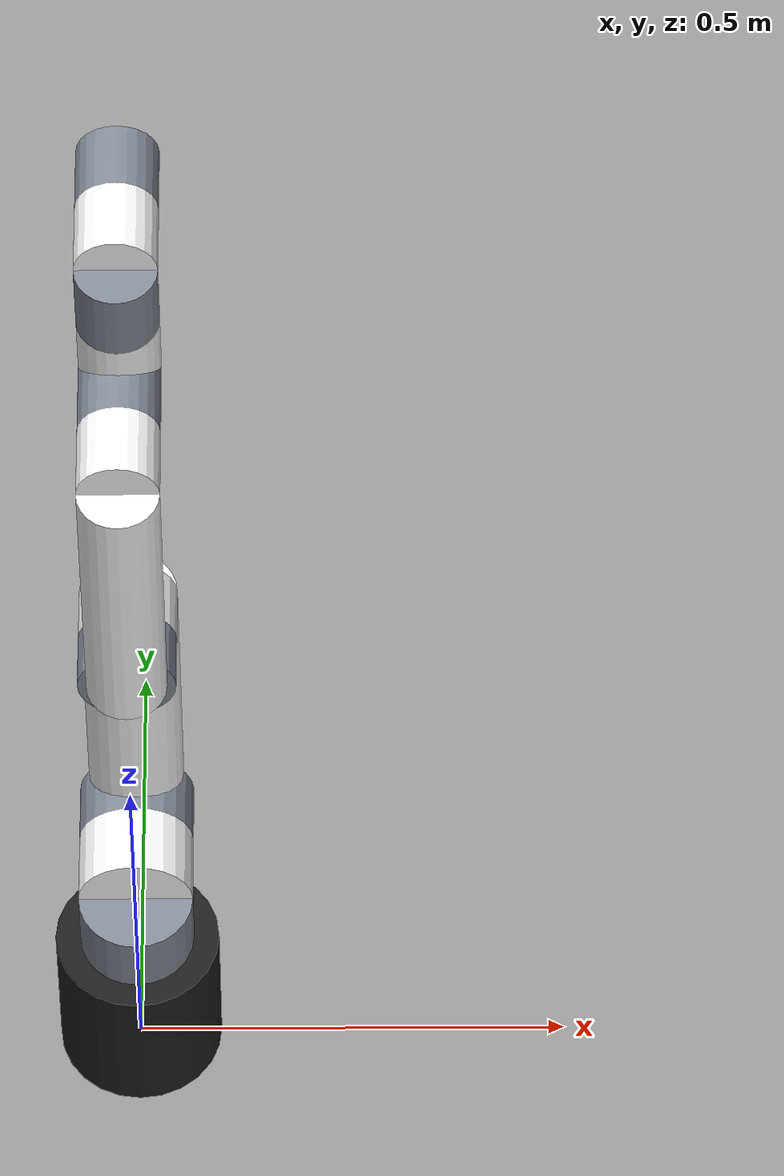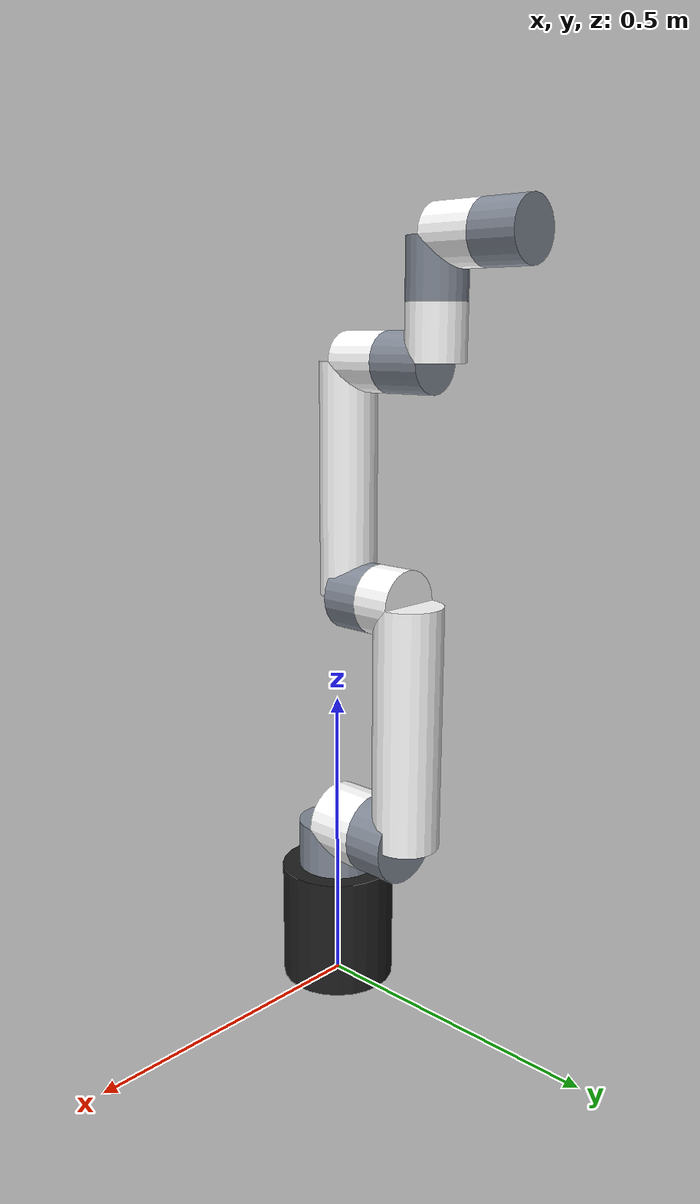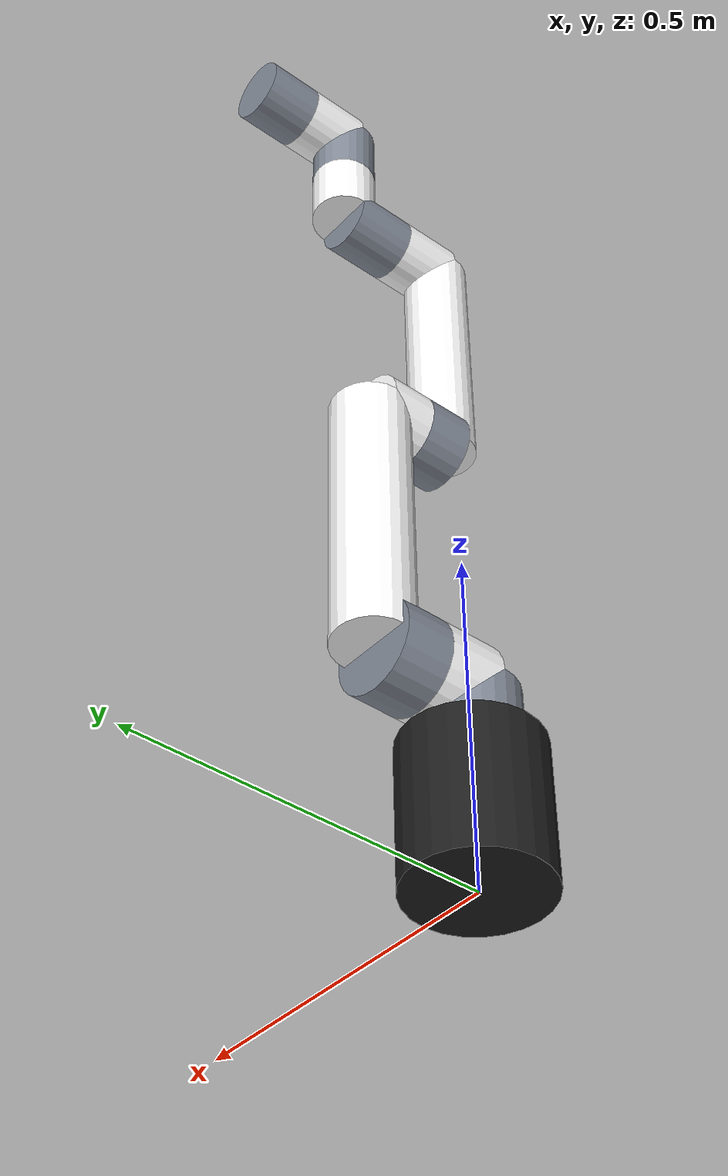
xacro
<?xml version="1.0"?>
<robot name="chin_arm" xmlns:xacro="http://ros.org/wiki/xacro">

  <xacro:property name="arm_id" value="chin"/>
  <!--is the robot being simulated in gazebo?-->
  <xacro:property name="gazebo" value="false"/>
  <xacro:property name="safety_distance" value="0"/>

  <xacro:property name="link_base_height" value="0.204"/>
  <xacro:property name="link_base_radius" value="0.095"/>
  <xacro:property name="link_1_height" value="0.081"/>
  <xacro:property name="link_1_radius" value="0.066"/>
  <xacro:property name="link_2_height" value="0.082"/>
  <xacro:property name="link_2_radius" value="0.066"/>
  <xacro:property name="link_3_height" value="0.07"/>
  <xacro:property name="link_3_radius" value="0.066"/>
  <xacro:property name="link_4_height" value="0.398"/>
  <xacro:property name="link_4_radius" value="0.055"/>
  <xacro:property name="link_5_height" value="0.065"/>
  <xacro:property name="link_5_radius" value="0.055"/>
  <xacro:property name="link_6_height" value="0.063"/>
  <xacro:property name="link_6_radius" value="0.055"/>
  <xacro:property name="link_7_height" value="0.36"/>
  <xacro:property name="link_7_radius" value="0.045"/>
  <xacro:property name="link_8_height" value="0.083"/>
  <xacro:property name="link_8_radius" value="0.045"/>
  <xacro:property name="link_9_height" value="0.087"/>
  <xacro:property name="link_9_radius" value="0.045"/>
  <xacro:property name="link_10_height" value="0.083"/>
  <xacro:property name="link_10_radius" value="0.045"/>
  <xacro:property name="link_11_height" value="0.087"/>
  <xacro:property name="link_11_radius" value="0.045"/>
  <xacro:property name="link_12_height" value="0.083"/>
  <xacro:property name="link_12_radius" value="0.045"/>
  <xacro:property name="link_13_height" value="0.077"/>
  <xacro:property name="link_13_radius" value="0.045"/>

  <xacro:property name="mesh" value="no"/>
  <xacro:property name="description_pkg" value="${arm_id}_description"/>

  <material name="white">
    <color rgba="1 1 1 1"/>
  </material>
  <material name="blue">
    <color rgba="0 0 0.8 1"/>
  </material>
  <material name="silver">
    <color rgba="0.51 0.54 0.59 1"/>
  </material>

  <!-- with two spheres at its caps. The capsule will always be    -->
  <!-- aligned with the axis of 'direction' you pass along.        -->
  <!-- radius: Radii of both the cylinder and both spheres [m]     -->
  <!-- length: Length of the cylinder/distance between the centers -->
  <!--         of the spheres. NOT overall length of capsule!      -->
  <!-- xyz:    Position of the center of the capsule/cylinder      -->
  <!-- direction: One of { x, y, z, -x, -y, -z }                   -->
  <xacro:macro name="collision_capsule" params="radius length xyz:='0 0 0' direction:='z'">
    <xacro:property name="r" value="${0.5*pi if 'y' in direction else 0}"/>
    <xacro:property name="p" value="${0.5*pi if 'x' in direction else 0}"/>
    <xacro:property name="y" value="0"/>
    <xacro:property name="x" value="${xyz.split(' ')[0]}"/>
    <xacro:property name="y" value="${xyz.split(' ')[1]}"/>
    <xacro:property name="z" value="${xyz.split(' ')[2]}"/>
    <!--sphere center offsets from center of cylinder-->
    <xacro:property name="sx" value="${0.5*length if 'x' in direction else 0}"/>
    <xacro:property name="sy" value="${0.5*length if 'y' in direction else 0}"/>
    <xacro:property name="sz" value="${0.5*length if 'z' in direction else 0}"/>
    <collision>
      <origin xyz="${x} ${y} ${z}" rpy="${r} ${p} ${y}"/>
      <geometry>
        <cylinder radius="${radius}" length="${length}"/>
      </geometry>
    </collision>
    <collision>
      <origin xyz="${x+sx} ${y+sy} ${z+sz}"/>
      <geometry>
        <sphere radius="${radius}"/>
      </geometry>
    </collision>
    <collision>
      <origin xyz="${x-sx} ${y-sy} ${z-sz}"/>
      <geometry>
        <sphere radius="${radius}"/>
      </geometry>
    </collision>
  </xacro:macro>

  <xacro:macro name="link_with_sc"  params="name link_height link_radius pos_xyz:='0 0 0' pos_rpy:='0 0 0' visual_color:='white' prefix=${arm_id} rpy:='0 0 0' **self_collision_geometries gazebo:=false">
    <!--sub-link defining detailed meshes for collision with environment-->
    <link name="${prefix}_${name}">
      <visual>
	      <origin xyz="${pos_xyz}" rpy="${pos_rpy}"/>
        <geometry>
          <!--the expression of condition cannot contain the key 'true/false' and '0/1'-->
          <xacro:if value="${mesh == 'yes'}">
            <mesh filename="package://${description_pkg}/meshes/visual/${name}.dae"/>
          </xacro:if>
          <xacro:unless value="${mesh == 'yes'}">
            <cylinder length="${link_height}" radius="${link_radius}"/>
          </xacro:unless>
        </geometry>
        <xacro:unless value="${mesh == 'yes'}">
          <material name="${visual_color}"/>
        </xacro:unless>
      </visual>
      <collision>
	      <origin xyz="${pos_xyz}" rpy="${pos_rpy}"/>
        <geometry>
          <xacro:if value="${mesh == 'yes'}">
            <mesh filename="package://${description_pkg}/meshes/collision/${name}.stl"/>
          </xacro:if>
          <xacro:unless value="${mesh == 'yes'}">
            <cylinder length="${link_height}" radius="${link_radius}"/>
          </xacro:unless>
        </geometry>
      </collision>
      <xacro:if value="${gazebo}">
        <xacro:inertial_props name="${name}"/>
      </xacro:if>
    </link>
    <!--sub-link defining coarse geometries of real robot's internal self-collision-->
    <link name="${prefix}_${name}_sc">
      <xacro:unless value="${gazebo}">
        <xacro:insert_block name="self_collision_geometries"/>
      </xacro:unless>
    </link>
    <!--fixed joint between both sub-links-->
    <joint name="${prefix}_${name}_sc_joint" type="fixed">
      <origin rpy="${rpy}"/>
      <parent link="${prefix}_${name}"/>
      <child link="${prefix}_${name}_sc"/>
    </joint>
  </xacro:macro>

  <!--fixed link0-->
  <xacro:link_with_sc name="link_0" link_height="${link_base_height}" link_radius="${link_base_radius}" pos_xyz="0 0 ${0.5*link_base_height}" visual_color="black" gazebo="${gazebo}">
    <self_collision_geometries/>
  </xacro:link_with_sc>

  <!--link1 to link0-->
  <xacro:link_with_sc name="link_1" link_height="${link_1_height}" link_radius="${link_1_radius}" pos_xyz="0 0 ${0.5*link_1_height}" visual_color="silver" gazebo="${gazebo}">
    <self_collision_geometries>
      <xacro:collision_capsule xyz="0 0 ${0.5*link_1_height}" radius="${link_1_radius+safety_distance}" length="${link_1_height+safety_distance}"/>
    </self_collision_geometries>
  </xacro:link_with_sc>
  <joint name="${arm_id}_joint_1" type="revolute">
    <safety_controller k_position="100.0" k_velocity="40.0" soft_lower_limit="-${pi}" soft_upper_limit="${pi}"/>
    <origin rpy="0 0 0" xyz="0 0 ${link_base_height}"/>
    <parent link="${arm_id}_link_0"/>
    <child link="${arm_id}_link_1"/>
    <axis xyz="0 0 1"/>
    <limit lower="-${pi}" upper="${pi}" effort="0" velocity="0"/>
    <dynamics D="1" K="7000" damping="0.003" friction="0.0" mu_coulomb="0" mu_viscous="16"/>
  </joint>

  <!--link2 to link1-->
  <xacro:link_with_sc name="link_2" link_height="${link_2_height}" link_radius="${link_2_radius}" pos_xyz="0 0 ${0.5*link_2_height}" gazebo="${gazebo}">
    <self_collision_geometries>
      <xacro:collision_capsule xyz="0 0 ${0.5*link_2_height}" radius="${link_2_radius+safety_distance}" length="${link_2_height+safety_distance}"/>
    </self_collision_geometries>
  </xacro:link_with_sc>
  <joint name="${arm_id}_joint_2" type="fixed">
    <origin rpy="-${0.5*pi} 0 0" xyz="0 0 ${link_1_height}"/>
    <parent link="${arm_id}_link_1"/>
    <child link="${arm_id}_link_2"/>
    <axis xyz="0 0 1"/>
    <dynamics D="1" K="7000" damping="0.003" friction="0.0" mu_coulomb="0" mu_viscous="16"/>
  </joint>

  <!--link3 to link2-->
  <xacro:link_with_sc name="link_3" link_height="${link_3_height}" link_radius="${link_3_radius}" pos_xyz="0 0 ${0.5*link_3_height}" visual_color="silver" gazebo="${gazebo}">
    <self_collision_geometries>
      <xacro:collision_capsule xyz="0 0 ${0.5*link_3_height}" radius="${link_3_radius+safety_distance}" length="${link_3_height+safety_distance}"/>
    </self_collision_geometries>
  </xacro:link_with_sc>
  <joint name="${arm_id}_joint_3" type="revolute">
    <safety_controller k_position="100.0" k_velocity="40.0" soft_lower_limit="-${pi}" soft_upper_limit="${pi}"/>
    <origin rpy="0 0 0" xyz="0 0 ${link_2_height}"/>
    <parent link="${arm_id}_link_2"/>
    <child link="${arm_id}_link_3"/>
    <axis xyz="0 0 1"/>
    <limit lower="-${pi}" upper="${pi}" effort="0" velocity="0"/>
    <dynamics D="1" K="7000" damping="0.003" friction="0.0" mu_coulomb="0" mu_viscous="16"/>
  </joint>

  <!--link4 to link3-->
  <xacro:link_with_sc name="link_4" link_height="${link_4_height}" link_radius="${link_4_radius}" pos_xyz="0 0 ${0.5*link_4_height}" gazebo="${gazebo}">
    <self_collision_geometries>
      <xacro:collision_capsule xyz="0 0 ${0.5*link_4_height}" radius="${link_4_radius+safety_distance}" length="${link_4_height+safety_distance}"/>
    </self_collision_geometries>
  </xacro:link_with_sc>
  <joint name="${arm_id}_joint_4" type="fixed">
    <origin rpy="${0.5*pi} 0 0" xyz="0 0 ${link_3_height}"/>
    <parent link="${arm_id}_link_3"/>
    <child link="${arm_id}_link_4"/>
    <axis xyz="0 0 1"/>
    <dynamics D="1" K="7000" damping="0.003" friction="0.0" mu_coulomb="0" mu_viscous="16"/>
  </joint>

  <!--link5 to link4-->
  <xacro:link_with_sc name="link_5" link_height="${link_5_height}" link_radius="${link_5_radius}" pos_xyz="0 0 ${0.5*link_5_height}" gazebo="${gazebo}">
    <self_collision_geometries>
      <xacro:collision_capsule xyz="0 0 ${0.5*link_5_height}" radius="${link_5_radius+safety_distance}" length="${link_5_height+safety_distance}"/>
    </self_collision_geometries>
  </xacro:link_with_sc>
  <joint name="${arm_id}_joint_5" type="fixed">
    <origin rpy="${0.5*pi} 0 0" xyz="0 0 ${link_4_height}"/>
    <parent link="${arm_id}_link_4"/>
    <child link="${arm_id}_link_5"/>
    <axis xyz="0 0 1"/>
    <dynamics D="1" K="7000" damping="0.003" friction="0.0" mu_coulomb="0" mu_viscous="16"/>
  </joint>

  <!--link6 to link5-->
  <xacro:link_with_sc name="link_6" link_height="${link_6_height}" link_radius="${link_6_radius}" pos_xyz="0 0 ${0.5*link_6_height}" visual_color="silver" gazebo="${gazebo}">
    <self_collision_geometries>
      <xacro:collision_capsule xyz="0 0 ${0.5*link_6_height}" radius="${link_6_radius+safety_distance}" length="${link_6_height+safety_distance}"/>
    </self_collision_geometries>
  </xacro:link_with_sc>
  <joint name="${arm_id}_joint_6" type="revolute">
    <safety_controller k_position="100.0" k_velocity="40.0" soft_lower_limit="-2.7925" soft_upper_limit="2.7925"/>
    <origin rpy="0 0 0" xyz="0 0 ${link_5_height}"/>
    <parent link="${arm_id}_link_5"/>
    <child link="${arm_id}_link_6"/>
    <axis xyz="0 0 1"/>
    <limit lower="-2.7925" upper="2.7925" effort="0" velocity="0"/>
    <dynamics D="1" K="7000" damping="0.003" friction="0.0" mu_coulomb="0" mu_viscous="16"/>
  </joint>

  <!--link7 to link6-->
  <xacro:link_with_sc name="link_7" link_height="${link_7_height}" link_radius="${link_7_radius}" pos_xyz="0 0 ${0.5*link_7_height}" gazebo="${gazebo}">
    <self_collision_geometries>
      <xacro:collision_capsule xyz="0 0 ${0.5*link_7_height}" radius="${link_7_radius+safety_distance}" length="${link_7_height+safety_distance}"/>
    </self_collision_geometries>
  </xacro:link_with_sc>
  <joint name="${arm_id}_joint_7" type="fixed">
    <origin rpy="-${0.5*pi} 0 0" xyz="0 0 ${link_6_height}"/>
    <parent link="${arm_id}_link_6"/>
    <child link="${arm_id}_link_7"/>
    <axis xyz="0 0 1"/>
    <dynamics D="1" K="7000" damping="0.003" friction="0.0" mu_coulomb="0" mu_viscous="16"/>
  </joint>

  <!--link8 to link7-->
  <xacro:link_with_sc name="link_8" link_height="${link_8_height}" link_radius="${link_8_radius}" pos_xyz="0 0 ${0.5*link_8_height}" gazebo="${gazebo}">
    <self_collision_geometries>
      <xacro:collision_capsule xyz="0 0 ${0.5*link_8_height}" radius="${link_8_radius+safety_distance}" length="${link_8_height+safety_distance}"/>
    </self_collision_geometries>
  </xacro:link_with_sc>
  <joint name="${arm_id}_joint_8" type="fixed">
    <origin rpy="-${0.5*pi} 0 0" xyz="0 0 ${link_7_height}"/>
    <parent link="${arm_id}_link_7"/>
    <child link="${arm_id}_link_8"/>
    <axis xyz="0 0 1"/>
    <dynamics D="1" K="7000" damping="0.003" friction="0.0" mu_coulomb="0" mu_viscous="16"/>
  </joint>

  <!--link9 to link8-->
  <xacro:link_with_sc name="link_9" link_height="${link_9_height}" link_radius="${link_9_radius}" pos_xyz="0 0 ${0.5*link_9_height}" visual_color="silver" gazebo="${gazebo}">
    <self_collision_geometries>
      <xacro:collision_capsule xyz="0 0 ${0.5*link_9_height}" radius="${link_9_radius+safety_distance}" length="${link_9_height+safety_distance}"/>
    </self_collision_geometries>
  </xacro:link_with_sc>
  <joint name="${arm_id}_joint_9" type="revolute">
    <safety_controller k_position="100.0" k_velocity="40.0" soft_lower_limit="-${pi}" soft_upper_limit="${pi}"/>
    <origin rpy="0 0 0" xyz="0 0 ${link_8_height}"/>
    <parent link="${arm_id}_link_8"/>
    <child link="${arm_id}_link_9"/>
    <axis xyz="0 0 1"/>
    <limit lower="-${pi}" upper="${pi}" effort="0" velocity="0"/>
    <dynamics D="1" K="7000" damping="0.003" friction="0.0" mu_coulomb="0" mu_viscous="16"/>
  </joint>

  <!--link10 to link9-->
  <xacro:link_with_sc name="link_10" link_height="${link_10_height}" link_radius="${link_10_radius}" pos_xyz="0 0 ${0.5*link_10_height}" gazebo="${gazebo}">
    <self_collision_geometries>
      <xacro:collision_capsule xyz="0 0 ${0.5*link_10_height}" radius="${link_10_radius+safety_distance}" length="${link_10_height+safety_distance}"/>
    </self_collision_geometries>
  </xacro:link_with_sc>
  <joint name="${arm_id}_joint_10" type="fixed">
    <origin rpy="${0.5*pi} 0 0" xyz="0 0 ${link_9_height}"/>
    <parent link="${arm_id}_link_9"/>
    <child link="${arm_id}_link_10"/>
    <axis xyz="0 0 1"/>
    <dynamics D="1" K="7000" damping="0.003" friction="0.0" mu_coulomb="0" mu_viscous="16"/>
  </joint>

  <!--link11 to link10-->
  <xacro:link_with_sc name="link_11" link_height="${link_11_height}" link_radius="${link_11_radius}" pos_xyz="0 0 ${0.5*link_11_height}" visual_color="silver" gazebo="${gazebo}">
    <self_collision_geometries>
      <xacro:collision_capsule xyz="0 0 ${0.5*link_11_height}" radius="${link_11_radius+safety_distance}" length="${link_11_height+safety_distance}"/>
    </self_collision_geometries>
  </xacro:link_with_sc>
  <joint name="${arm_id}_joint_11" type="revolute">
    <safety_controller k_position="100.0" k_velocity="40.0" soft_lower_limit="-${pi}" soft_upper_limit="${pi}"/>
    <origin rpy="0 0 0" xyz="0 0 ${link_10_height}"/>
    <parent link="${arm_id}_link_10"/>
    <child link="${arm_id}_link_11"/>
    <axis xyz="0 0 1"/>
    <limit lower="-${pi}" upper="${pi}" effort="0" velocity="0"/>
    <dynamics D="1" K="7000" damping="0.003" friction="0.0" mu_coulomb="0" mu_viscous="16"/>
  </joint>

  <!--link12 to link11-->
  <xacro:link_with_sc name="link_12" link_height="${link_12_height}" link_radius="${link_12_radius}" pos_xyz="0 0 ${0.5*link_12_height}" gazebo="${gazebo}">
    <self_collision_geometries>
      <xacro:collision_capsule xyz="0 0 ${0.5*link_12_height}" radius="${link_12_radius+safety_distance}" length="${link_12_height+safety_distance}"/>
    </self_collision_geometries>
  </xacro:link_with_sc>
  <joint name="${arm_id}_joint_12" type="fixed">
    <origin rpy="-${0.5*pi} 0 0" xyz="0 0 ${link_11_height}"/>
    <parent link="${arm_id}_link_11"/>
    <child link="${arm_id}_link_12"/>
    <axis xyz="0 0 1"/>
    <dynamics D="1" K="7000" damping="0.003" friction="0.0" mu_coulomb="0" mu_viscous="16"/>
  </joint>

  <!--link13 to link12-->
  <xacro:link_with_sc name="link_13" link_height="${link_13_height}" link_radius="${link_13_radius}" pos_xyz="0 0 ${0.5*link_13_height}" visual_color="silver" gazebo="${gazebo}">
    <self_collision_geometries>
      <xacro:collision_capsule xyz="0 0 ${0.5*link_13_height}" radius="${link_13_radius+safety_distance}" length="${link_13_height+safety_distance}"/>
    </self_collision_geometries>
  </xacro:link_with_sc>
  <joint name="${arm_id}_joint_13" type="revolute">
    <safety_controller k_position="100.0" k_velocity="40.0" soft_lower_limit="-${pi}" soft_upper_limit="${pi}"/>
    <origin rpy="0 0 0" xyz="0 0 ${link_12_height}"/>
    <parent link="${arm_id}_link_12"/>
    <child link="${arm_id}_link_13"/>
    <axis xyz="0 0 1"/>
    <limit lower="-${pi}" upper="${pi}" effort="0" velocity="0"/>
    <dynamics D="1" K="7000" damping="0.003" friction="0.0" mu_coulomb="0" mu_viscous="16"/>
  </joint>

  <!--link14 to link13-->
  <link name="${arm_id}_link_14"/>
  <joint name="${arm_id}_joint_14" type="fixed">
    <origin rpy="0 0 -${pi}" xyz="0 0 ${link_13_height}"/>
    <parent link="${arm_id}_link_13"/>
    <child link="${arm_id}_link_14"/>
  </joint>
</robot>
